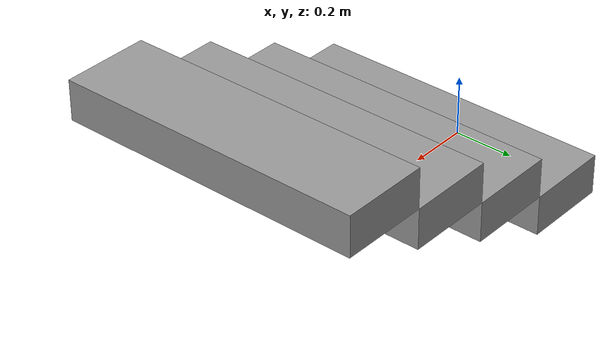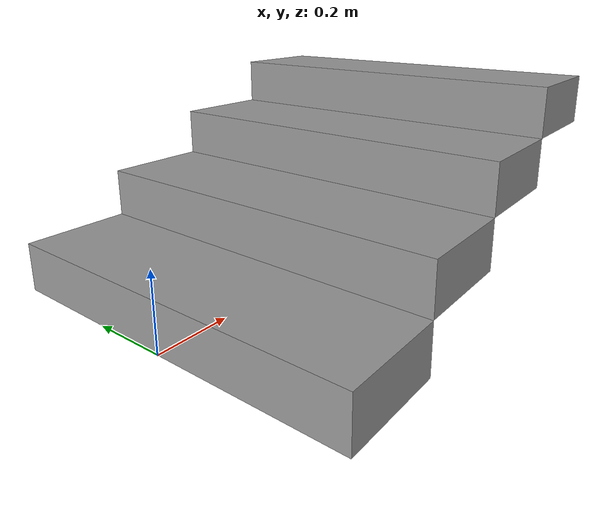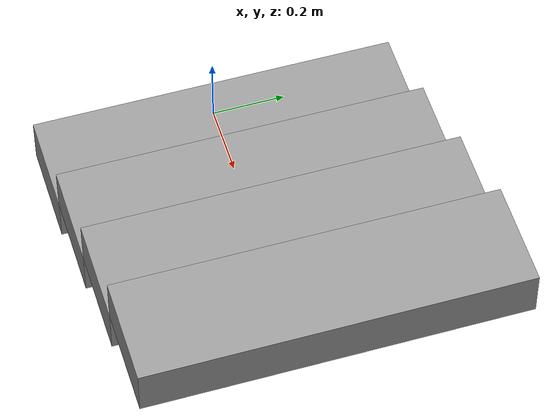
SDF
<?xml version="1.0" ?>
<sdf version="1.6">
  <model name="parametric_stairs">
    <static>true</static>
    <link name="step_0">
      <pose>0.14 0 0.065 0 0 0</pose>
      <collision name="collision">
        <geometry>
          <box>
            <size>0.28 1.0 0.13</size>
          </box>
        </geometry>
      </collision>
      <visual name="visual">
        <geometry>
          <box>
            <size>0.28 1.0 0.13</size>
          </box>
        </geometry>
        <material>
          <script>
            <uri>file://media/materials/scripts/gazebo.material</uri>
            <name>Gazebo/Grey</name>
          </script>
        </material>
      </visual>
    </link>
    <link name="step_1">
      <pose>0.42000000000000004 0 0.195 0 0 0</pose>
      <collision name="collision">
        <geometry>
          <box>
            <size>0.28 1.0 0.13</size>
          </box>
        </geometry>
      </collision>
      <visual name="visual">
        <geometry>
          <box>
            <size>0.28 1.0 0.13</size>
          </box>
        </geometry>
        <material>
          <script>
            <uri>file://media/materials/scripts/gazebo.material</uri>
            <name>Gazebo/Grey</name>
          </script>
        </material>
      </visual>
    </link>
    <link name="step_2">
      <pose>0.7000000000000001 0 0.325 0 0 0</pose>
      <collision name="collision">
        <geometry>
          <box>
            <size>0.28 1.0 0.13</size>
          </box>
        </geometry>
      </collision>
      <visual name="visual">
        <geometry>
          <box>
            <size>0.28 1.0 0.13</size>
          </box>
        </geometry>
        <material>
          <script>
            <uri>file://media/materials/scripts/gazebo.material</uri>
            <name>Gazebo/Grey</name>
          </script>
        </material>
      </visual>
    </link>
    <link name="step_3">
      <pose>0.9800000000000001 0 0.455 0 0 0</pose>
      <collision name="collision">
        <geometry>
          <box>
            <size>0.28 1.0 0.13</size>
          </box>
        </geometry>
      </collision>
      <visual name="visual">
        <geometry>
          <box>
            <size>0.28 1.0 0.13</size>
          </box>
        </geometry>
        <material>
          <script>
            <uri>file://media/materials/scripts/gazebo.material</uri>
            <name>Gazebo/Grey</name>
          </script>
        </material>
      </visual>
    </link>
  </model>
</sdf>
